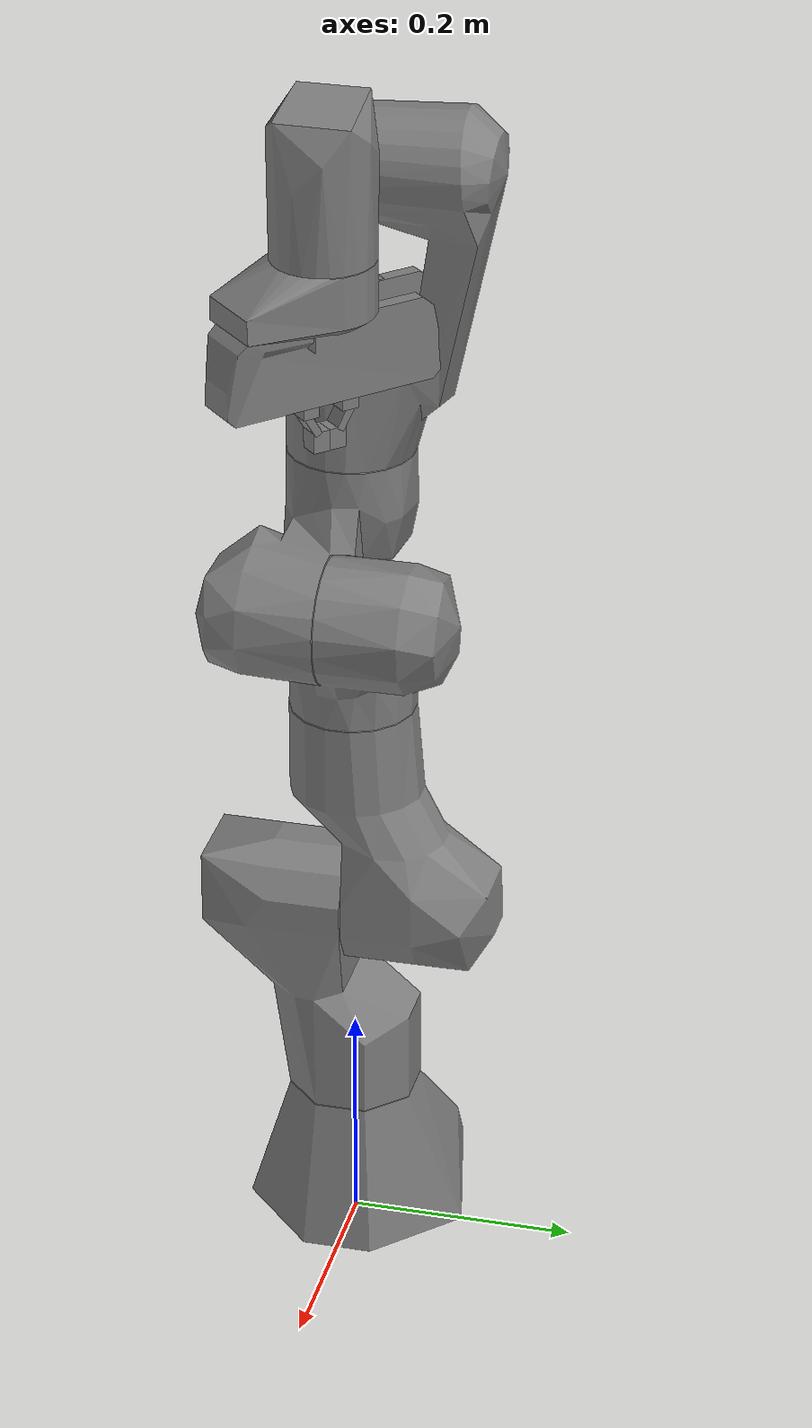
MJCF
<mujoco model="panda">
  <compiler angle="radian" autolimits="true"/>
  <statistic meansize="0.171728" extent="1.3056" center="-0.00445893 0.0150828 0.520032" />
  <asset>
    <mesh name="link0" file="/opt/ros/noetic/share/franka_description/meshes/collision/link0.stl" />
    <mesh name="link1" file="/opt/ros/noetic/share/franka_description/meshes/collision/link1.stl" />
    <mesh name="link2" file="/opt/ros/noetic/share/franka_description/meshes/collision/link2.stl" />
    <mesh name="link3" file="/opt/ros/noetic/share/franka_description/meshes/collision/link3.stl" />
    <mesh name="link4" file="/opt/ros/noetic/share/franka_description/meshes/collision/link4.stl" />
    <mesh name="link5" file="/opt/ros/noetic/share/franka_description/meshes/collision/link5.stl" />
    <mesh name="link6" file="/opt/ros/noetic/share/franka_description/meshes/collision/link6.stl" />
    <mesh name="link7" file="/opt/ros/noetic/share/franka_description/meshes/collision/link7.stl" />
    <mesh name="hand" file="/opt/ros/noetic/share/franka_description/meshes/collision/hand.stl" />
  </asset>
  <worldbody>
    <body name="panda_link0">
      <inertial pos="-0.041018 -0.00014 0.049974" quat="0.00630474 0.751245 0.00741774 0.659952" mass="0.629769" diaginertia="0.00430465 0.00387984 0.00313051" />
      <geom type="mesh" mesh="link0" />
      <body name="panda_link1" pos="0 0 0.333">
        <inertial pos="0.003875 0.002081 -0.04762" quat="0.711549 0.00634377 -0.0131124 0.702485" mass="4.97068" diaginertia="0.707137 0.703435 0.00852456" />
        <joint name="panda_joint1" pos="0 0 0" axis="0 0 1" range="-2.9671 2.9671" damping="0.003" />
        <geom type="mesh" mesh="link1" />
        <body name="panda_link2"  quat="0.707107 -0.707107 0 0">
          <inertial pos="-0.003141 -0.02872 0.003495" quat="-0.168175 0.828366 -0.122878 0.520027" mass="0.646926" diaginertia="0.0310326 0.0283001 0.00273425" />
          <joint name="panda_joint2" pos="0 0 0" axis="0 0 1" range="-1.8326 1.8326" damping="0.003" />
          <geom type="mesh" mesh="link2" />
          <body name="panda_link3" pos="0 -0.316 0" quat="0.707107 0.707107 0 0">
            <inertial pos="0.027518 0.039252 -0.066502" quat="0.662769 -0.00678331 0.252053 0.705096" mass="3.2286" diaginertia="0.0415014 0.0414793 0.00124635" />
            <joint name="panda_joint3" pos="0 0 0" axis="0 0 1" range="-2.9671 2.9671" damping="0.003" />
            <geom type="mesh" mesh="link3" />
            <body name="panda_link4" pos="0.0825 0 0" quat="0.707107 0.707107 0 0">
              <inertial pos="-0.05317 0.104419 0.027454" quat="0.65058 0.529822 -0.0962034 0.535518" mass="3.5879" diaginertia="0.0349596 0.0281483 0.0106201" />
              <joint name="panda_joint4" pos="0 0 0" axis="0 0 1" range="-3.1416 -0.4" damping="0.003" />
              <geom type="mesh" mesh="link4" />
              <body name="panda_link5" pos="-0.0825 0.384 0" quat="0.707107 -0.707107 0 0">
                <inertial pos="-0.011953 0.041065 -0.038437" quat="0.987313 -0.0121954 0.0719187 -0.141037" mass="1.22595" diaginertia="0.0367625 0.0288531 0.00803437" />
                <joint name="panda_joint5" pos="0 0 0" axis="0 0 1" range="-2.9671 2.9671" damping="0.003" />
                <geom type="mesh" mesh="link5" />
                <body name="panda_link6"  quat="0.707107 0.707107 0 0">
                  <inertial pos="0.060149 -0.014117 -0.010517" quat="0.101075 0.59332 0.0287227 0.798079" mass="1.66656" diaginertia="0.00584276 0.00431037 0.00159787" />
                  <joint name="panda_joint6" pos="0 0 0" axis="0 0 1" range="-0.0873 3.8223" damping="0.003" />
                  <geom type="mesh" mesh="link6" />
                  <body name="panda_link7" pos="0.088 0 0" quat="0.707107 0.707107 0 0">
                    <inertial pos="0.010517 -0.004252 0.061597" quat="0.992939 -0.0762041 0.0733595 -0.0537067" mass="0.735522" diaginertia="0.0127345 0.0101055 0.00451803" />
                    <joint name="panda_joint7" pos="0 0 0" axis="0 0 1" range="-2.9671 2.9671" damping="0.003" />
                    <geom type="mesh" mesh="link7" />
                    <site name="ee_site" pos="0 0 0.107" quat="0.707388 0 0 -0.706825" />
                    <body name="panda_link8" pos="0 0 0.107">
                      <body name="panda_hand"  quat="0.92388 0 0 -0.382683">
                        <inertial pos="-0.01 0 0.03" quat="0.5 0.5 0.5 0.5" mass="0.73" diaginertia="0.0025 0.0017 0.001" />
                        <geom type="mesh" mesh="hand" />
                        <body name="panda_leftfinger" pos="0 0 0.0584">
                          <inertial pos="0 0 0" mass="0.015" diaginertia="2.375e-06 2.375e-06 7.5e-07" />
                          <joint name="panda_finger_joint1" pos="0 0 0" axis="0 1 0" type="slide" range="0 0.04" damping="0.03" />
                          <geom size="0.011 0.0075 0.01" pos="0 0.0185 0.011" type="box" />
                          <geom size="0.011 0.0044 0.0019" pos="0 0.0068 0.0022" type="box" />
                          <geom size="0.00875 0.0035 0.01175" pos="0 0.0159 0.02835" quat="0.965926 0.258819 0 0" type="box" />
                          <geom size="0.00875 0.0076 0.00925" pos="0 0.00758 0.04525" type="box" />
                        </body>
                        <body name="panda_rightfinger" pos="0 0 0.0584">
                          <inertial pos="0 0 0" mass="0.015" diaginertia="2.375e-06 2.375e-06 7.5e-07" />
                          <joint name="panda_finger_joint2" pos="0 0 0" axis="0 -1 0" type="slide" range="0 0.04" damping="0.03" />
                          <geom size="0.011 0.0075 0.01" pos="0 -0.0185 0.011" type="box" />
                          <geom size="0.011 0.0044 0.0019" pos="0 -0.0068 0.0022" type="box" />
                          <geom size="0.00875 0.0035 0.01175" pos="0 -0.0159 0.02835" quat="0.965926 -0.258819 0 0" type="box" />
                          <geom size="0.00875 0.0076 0.00925" pos="0 -0.00758 0.04525" type="box" />
                        </body>
                      </body>
                    </body>
                  </body>
                </body>
              </body>
            </body>
          </body>
        </body>
      </body>
    </body>
  </worldbody>
  <sensor>
    <force site="ee_site" name="ee_force_sensor" />
    <torque site="ee_site" name="ee_torque_sensor" />
  </sensor>
</mujoco>
